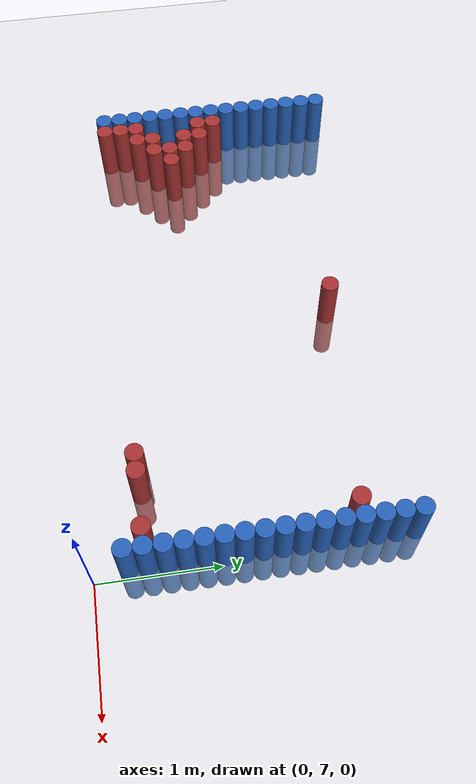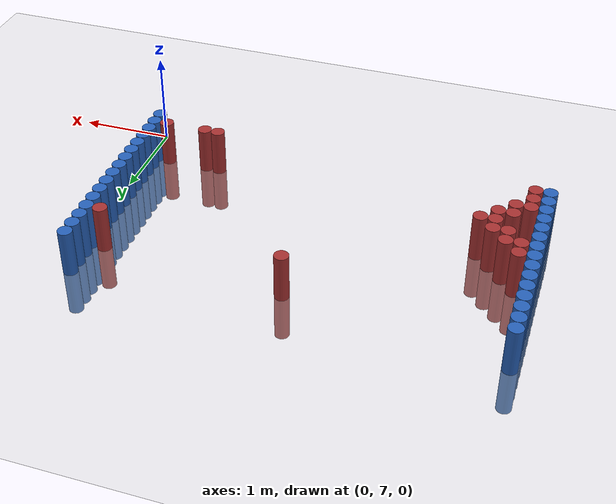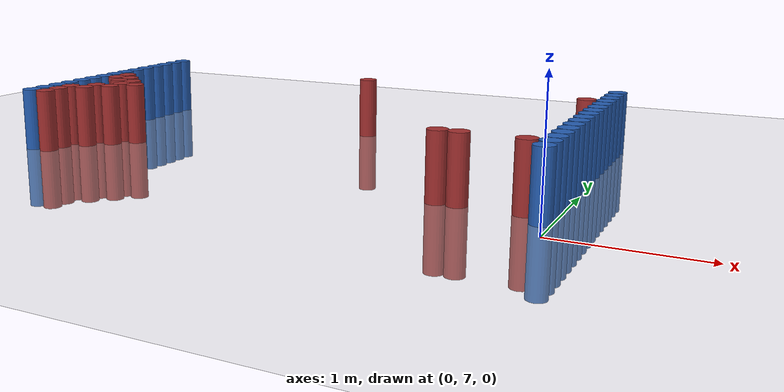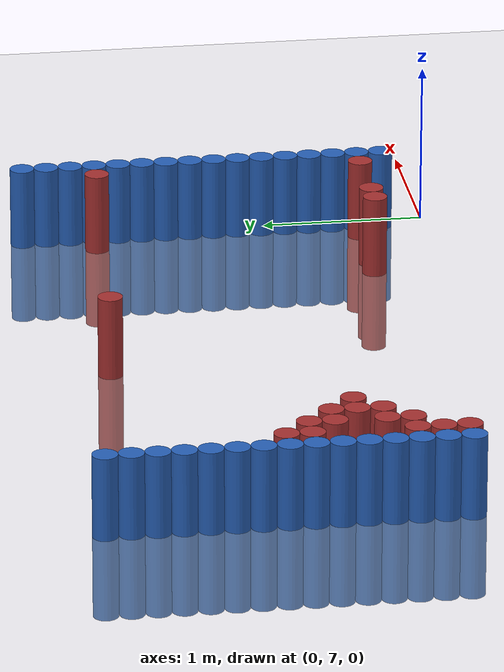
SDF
<sdf version="1.6">
 <world name="default">
  <model name="ground_plane">
   <static>1</static>
   <link name="link">
    <collision name="collision">
     <geometry><plane><normal>0 0 1</normal><size>100 100</size></plane></geometry>
     <surface><friction><ode><mu>100</mu><mu2>50</mu2></ode></friction></surface>
    </collision>
    <visual name="visual">
     <cast_shadows>0</cast_shadows>
     <geometry><plane><normal>0 0 1</normal><size>100 100</size></plane></geometry>
     <material>
      <script><uri>file://media/materials/scripts/gazebo.material</uri><name>Gazebo/Grey</name></script>
     </material>
    </visual>
   </link>
  </model>
  <model name="unit_cylinder_111">
   <static>1</static>
   <pose>-4.425000 7.425000 0.000000 0.000000 0.000000 0.000000</pose>
   <link name="link">
    <inertial>
     <mass>1</mass>
     <inertia><ixx>0.145833</ixx><ixy>0</ixy><ixz>0</ixz><iyy>0.145833</iyy><iyz>0</iyz><izz>0.125</izz></inertia>
    </inertial>
    <collision name="collision">
     <geometry><cylinder><radius>0.075000</radius><length>1</length></cylinder></geometry>
    </collision>
    <visual name="visual">
     <geometry><cylinder><radius>0.075000</radius><length>1</length></cylinder></geometry>
     <material>
      <ambient>0.152000 0.379000 0.720000 1</ambient>
      <diffuse>0.152000 0.379000 0.720000 1</diffuse>
     </material>
     <material>
      <script><name>Gazebo/Grey</name><uri>file://media/materials/scripts/gazebo.material</uri></script>
     </material>
    </visual>
   </link>
  </model>
  <model name="unit_cylinder_112">
   <static>1</static>
   <pose>-4.425000 7.575000 0.000000 0.000000 0.000000 0.000000</pose>
   <link name="link">
    <inertial>
     <mass>1</mass>
     <inertia><ixx>0.145833</ixx><ixy>0</ixy><ixz>0</ixz><iyy>0.145833</iyy><iyz>0</iyz><izz>0.125</izz></inertia>
    </inertial>
    <collision name="collision">
     <geometry><cylinder><radius>0.075000</radius><length>1</length></cylinder></geometry>
    </collision>
    <visual name="visual">
     <geometry><cylinder><radius>0.075000</radius><length>1</length></cylinder></geometry>
     <material>
      <ambient>0.152000 0.379000 0.720000 1</ambient>
      <diffuse>0.152000 0.379000 0.720000 1</diffuse>
     </material>
     <material>
      <script><name>Gazebo/Grey</name><uri>file://media/materials/scripts/gazebo.material</uri></script>
     </material>
    </visual>
   </link>
  </model>
  <model name="unit_cylinder_113">
   <static>1</static>
   <pose>-4.425000 7.725000 0.000000 0.000000 0.000000 0.000000</pose>
   <link name="link">
    <inertial>
     <mass>1</mass>
     <inertia><ixx>0.145833</ixx><ixy>0</ixy><ixz>0</ixz><iyy>0.145833</iyy><iyz>0</iyz><izz>0.125</izz></inertia>
    </inertial>
    <collision name="collision">
     <geometry><cylinder><radius>0.075000</radius><length>1</length></cylinder></geometry>
    </collision>
    <visual name="visual">
     <geometry><cylinder><radius>0.075000</radius><length>1</length></cylinder></geometry>
     <material>
      <ambient>0.152000 0.379000 0.720000 1</ambient>
      <diffuse>0.152000 0.379000 0.720000 1</diffuse>
     </material>
     <material>
      <script><name>Gazebo/Grey</name><uri>file://media/materials/scripts/gazebo.material</uri></script>
     </material>
    </visual>
   </link>
  </model>
  <model name="unit_cylinder_114">
   <static>1</static>
   <pose>-4.425000 7.875000 0.000000 0.000000 0.000000 0.000000</pose>
   <link name="link">
    <inertial>
     <mass>1</mass>
     <inertia><ixx>0.145833</ixx><ixy>0</ixy><ixz>0</ixz><iyy>0.145833</iyy><iyz>0</iyz><izz>0.125</izz></inertia>
    </inertial>
    <collision name="collision">
     <geometry><cylinder><radius>0.075000</radius><length>1</length></cylinder></geometry>
    </collision>
    <visual name="visual">
     <geometry><cylinder><radius>0.075000</radius><length>1</length></cylinder></geometry>
     <material>
      <ambient>0.152000 0.379000 0.720000 1</ambient>
      <diffuse>0.152000 0.379000 0.720000 1</diffuse>
     </material>
     <material>
      <script><name>Gazebo/Grey</name><uri>file://media/materials/scripts/gazebo.material</uri></script>
     </material>
    </visual>
   </link>
  </model>
  <model name="unit_cylinder_115">
   <static>1</static>
   <pose>-4.425000 8.025000 0.000000 0.000000 0.000000 0.000000</pose>
   <link name="link">
    <inertial>
     <mass>1</mass>
     <inertia><ixx>0.145833</ixx><ixy>0</ixy><ixz>0</ixz><iyy>0.145833</iyy><iyz>0</iyz><izz>0.125</izz></inertia>
    </inertial>
    <collision name="collision">
     <geometry><cylinder><radius>0.075000</radius><length>1</length></cylinder></geometry>
    </collision>
    <visual name="visual">
     <geometry><cylinder><radius>0.075000</radius><length>1</length></cylinder></geometry>
     <material>
      <ambient>0.152000 0.379000 0.720000 1</ambient>
      <diffuse>0.152000 0.379000 0.720000 1</diffuse>
     </material>
     <material>
      <script><name>Gazebo/Grey</name><uri>file://media/materials/scripts/gazebo.material</uri></script>
     </material>
    </visual>
   </link>
  </model>
  <model name="unit_cylinder_116">
   <static>1</static>
   <pose>-4.425000 8.175000 0.000000 0.000000 0.000000 0.000000</pose>
   <link name="link">
    <inertial>
     <mass>1</mass>
     <inertia><ixx>0.145833</ixx><ixy>0</ixy><ixz>0</ixz><iyy>0.145833</iyy><iyz>0</iyz><izz>0.125</izz></inertia>
    </inertial>
    <collision name="collision">
     <geometry><cylinder><radius>0.075000</radius><length>1</length></cylinder></geometry>
    </collision>
    <visual name="visual">
     <geometry><cylinder><radius>0.075000</radius><length>1</length></cylinder></geometry>
     <material>
      <ambient>0.152000 0.379000 0.720000 1</ambient>
      <diffuse>0.152000 0.379000 0.720000 1</diffuse>
     </material>
     <material>
      <script><name>Gazebo/Grey</name><uri>file://media/materials/scripts/gazebo.material</uri></script>
     </material>
    </visual>
   </link>
  </model>
  <model name="unit_cylinder_117">
   <static>1</static>
   <pose>-4.425000 8.325000 0.000000 0.000000 0.000000 0.000000</pose>
   <link name="link">
    <inertial>
     <mass>1</mass>
     <inertia><ixx>0.145833</ixx><ixy>0</ixy><ixz>0</ixz><iyy>0.145833</iyy><iyz>0</iyz><izz>0.125</izz></inertia>
    </inertial>
    <collision name="collision">
     <geometry><cylinder><radius>0.075000</radius><length>1</length></cylinder></geometry>
    </collision>
    <visual name="visual">
     <geometry><cylinder><radius>0.075000</radius><length>1</length></cylinder></geometry>
     <material>
      <ambient>0.152000 0.379000 0.720000 1</ambient>
      <diffuse>0.152000 0.379000 0.720000 1</diffuse>
     </material>
     <material>
      <script><name>Gazebo/Grey</name><uri>file://media/materials/scripts/gazebo.material</uri></script>
     </material>
    </visual>
   </link>
  </model>
  <model name="unit_cylinder_118">
   <static>1</static>
   <pose>-4.425000 8.475000 0.000000 0.000000 0.000000 0.000000</pose>
   <link name="link">
    <inertial>
     <mass>1</mass>
     <inertia><ixx>0.145833</ixx><ixy>0</ixy><ixz>0</ixz><iyy>0.145833</iyy><iyz>0</iyz><izz>0.125</izz></inertia>
    </inertial>
    <collision name="collision">
     <geometry><cylinder><radius>0.075000</radius><length>1</length></cylinder></geometry>
    </collision>
    <visual name="visual">
     <geometry><cylinder><radius>0.075000</radius><length>1</length></cylinder></geometry>
     <material>
      <ambient>0.152000 0.379000 0.720000 1</ambient>
      <diffuse>0.152000 0.379000 0.720000 1</diffuse>
     </material>
     <material>
      <script><name>Gazebo/Grey</name><uri>file://media/materials/scripts/gazebo.material</uri></script>
     </material>
    </visual>
   </link>
  </model>
  <model name="unit_cylinder_119">
   <static>1</static>
   <pose>-4.425000 8.625000 0.000000 0.000000 0.000000 0.000000</pose>
   <link name="link">
    <inertial>
     <mass>1</mass>
     <inertia><ixx>0.145833</ixx><ixy>0</ixy><ixz>0</ixz><iyy>0.145833</iyy><iyz>0</iyz><izz>0.125</izz></inertia>
    </inertial>
    <collision name="collision">
     <geometry><cylinder><radius>0.075000</radius><length>1</length></cylinder></geometry>
    </collision>
    <visual name="visual">
     <geometry><cylinder><radius>0.075000</radius><length>1</length></cylinder></geometry>
     <material>
      <ambient>0.152000 0.379000 0.720000 1</ambient>
      <diffuse>0.152000 0.379000 0.720000 1</diffuse>
     </material>
     <material>
      <script><name>Gazebo/Grey</name><uri>file://media/materials/scripts/gazebo.material</uri></script>
     </material>
    </visual>
   </link>
  </model>
  <model name="unit_cylinder_120">
   <static>1</static>
   <pose>-4.425000 8.775000 0.000000 0.000000 0.000000 0.000000</pose>
   <link name="link">
    <inertial>
     <mass>1</mass>
     <inertia><ixx>0.145833</ixx><ixy>0</ixy><ixz>0</ixz><iyy>0.145833</iyy><iyz>0</iyz><izz>0.125</izz></inertia>
    </inertial>
    <collision name="collision">
     <geometry><cylinder><radius>0.075000</radius><length>1</length></cylinder></geometry>
    </collision>
    <visual name="visual">
     <geometry><cylinder><radius>0.075000</radius><length>1</length></cylinder></geometry>
     <material>
      <ambient>0.152000 0.379000 0.720000 1</ambient>
      <diffuse>0.152000 0.379000 0.720000 1</diffuse>
     </material>
     <material>
      <script><name>Gazebo/Grey</name><uri>file://media/materials/scripts/gazebo.material</uri></script>
     </material>
    </visual>
   </link>
  </model>
  <model name="unit_cylinder_121">
   <static>1</static>
   <pose>-4.425000 8.925000 0.000000 0.000000 0.000000 0.000000</pose>
   <link name="link">
    <inertial>
     <mass>1</mass>
     <inertia><ixx>0.145833</ixx><ixy>0</ixy><ixz>0</ixz><iyy>0.145833</iyy><iyz>0</iyz><izz>0.125</izz></inertia>
    </inertial>
    <collision name="collision">
     <geometry><cylinder><radius>0.075000</radius><length>1</length></cylinder></geometry>
    </collision>
    <visual name="visual">
     <geometry><cylinder><radius>0.075000</radius><length>1</length></cylinder></geometry>
     <material>
      <ambient>0.152000 0.379000 0.720000 1</ambient>
      <diffuse>0.152000 0.379000 0.720000 1</diffuse>
     </material>
     <material>
      <script><name>Gazebo/Grey</name><uri>file://media/materials/scripts/gazebo.material</uri></script>
     </material>
    </visual>
   </link>
  </model>
  <model name="unit_cylinder_122">
   <static>1</static>
   <pose>-4.425000 9.075000 0.000000 0.000000 0.000000 0.000000</pose>
   <link name="link">
    <inertial>
     <mass>1</mass>
     <inertia><ixx>0.145833</ixx><ixy>0</ixy><ixz>0</ixz><iyy>0.145833</iyy><iyz>0</iyz><izz>0.125</izz></inertia>
    </inertial>
    <collision name="collision">
     <geometry><cylinder><radius>0.075000</radius><length>1</length></cylinder></geometry>
    </collision>
    <visual name="visual">
     <geometry><cylinder><radius>0.075000</radius><length>1</length></cylinder></geometry>
     <material>
      <ambient>0.152000 0.379000 0.720000 1</ambient>
      <diffuse>0.152000 0.379000 0.720000 1</diffuse>
     </material>
     <material>
      <script><name>Gazebo/Grey</name><uri>file://media/materials/scripts/gazebo.material</uri></script>
     </material>
    </visual>
   </link>
  </model>
  <model name="unit_cylinder_123">
   <static>1</static>
   <pose>-4.425000 9.225000 0.000000 0.000000 0.000000 0.000000</pose>
   <link name="link">
    <inertial>
     <mass>1</mass>
     <inertia><ixx>0.145833</ixx><ixy>0</ixy><ixz>0</ixz><iyy>0.145833</iyy><iyz>0</iyz><izz>0.125</izz></inertia>
    </inertial>
    <collision name="collision">
     <geometry><cylinder><radius>0.075000</radius><length>1</length></cylinder></geometry>
    </collision>
    <visual name="visual">
     <geometry><cylinder><radius>0.075000</radius><length>1</length></cylinder></geometry>
     <material>
      <ambient>0.152000 0.379000 0.720000 1</ambient>
      <diffuse>0.152000 0.379000 0.720000 1</diffuse>
     </material>
     <material>
      <script><name>Gazebo/Grey</name><uri>file://media/materials/scripts/gazebo.material</uri></script>
     </material>
    </visual>
   </link>
  </model>
  <model name="unit_cylinder_124">
   <static>1</static>
   <pose>-4.425000 9.375000 0.000000 0.000000 0.000000 0.000000</pose>
   <link name="link">
    <inertial>
     <mass>1</mass>
     <inertia><ixx>0.145833</ixx><ixy>0</ixy><ixz>0</ixz><iyy>0.145833</iyy><iyz>0</iyz><izz>0.125</izz></inertia>
    </inertial>
    <collision name="collision">
     <geometry><cylinder><radius>0.075000</radius><length>1</length></cylinder></geometry>
    </collision>
    <visual name="visual">
     <geometry><cylinder><radius>0.075000</radius><length>1</length></cylinder></geometry>
     <material>
      <ambient>0.152000 0.379000 0.720000 1</ambient>
      <diffuse>0.152000 0.379000 0.720000 1</diffuse>
     </material>
     <material>
      <script><name>Gazebo/Grey</name><uri>file://media/materials/scripts/gazebo.material</uri></script>
     </material>
    </visual>
   </link>
  </model>
  <model name="unit_cylinder_125">
   <static>1</static>
   <pose>-4.425000 9.525000 0.000000 0.000000 0.000000 0.000000</pose>
   <link name="link">
    <inertial>
     <mass>1</mass>
     <inertia><ixx>0.145833</ixx><ixy>0</ixy><ixz>0</ixz><iyy>0.145833</iyy><iyz>0</iyz><izz>0.125</izz></inertia>
    </inertial>
    <collision name="collision">
     <geometry><cylinder><radius>0.075000</radius><length>1</length></cylinder></geometry>
    </collision>
    <visual name="visual">
     <geometry><cylinder><radius>0.075000</radius><length>1</length></cylinder></geometry>
     <material>
      <ambient>0.152000 0.379000 0.720000 1</ambient>
      <diffuse>0.152000 0.379000 0.720000 1</diffuse>
     </material>
     <material>
      <script><name>Gazebo/Grey</name><uri>file://media/materials/scripts/gazebo.material</uri></script>
     </material>
    </visual>
   </link>
  </model>
  <model name="unit_cylinder_129">
   <static>1</static>
   <pose>-4.275000 7.425000 0.000000 0.000000 0.000000 0.000000</pose>
   <link name="link">
    <inertial>
     <mass>1</mass>
     <inertia><ixx>0.145833</ixx><ixy>0</ixy><ixz>0</ixz><iyy>0.145833</iyy><iyz>0</iyz><izz>0.125</izz></inertia>
    </inertial>
    <collision name="collision">
     <geometry><cylinder><radius>0.075000</radius><length>1</length></cylinder></geometry>
    </collision>
    <visual name="visual">
     <geometry><cylinder><radius>0.075000</radius><length>1</length></cylinder></geometry>
     <material>
      <ambient>0.648000 0.192000 0.192000 1</ambient>
      <diffuse>0.648000 0.192000 0.192000 1</diffuse>
     </material>
     <material>
      <script><name>Gazebo/Grey</name><uri>file://media/materials/scripts/gazebo.material</uri></script>
     </material>
    </visual>
   </link>
  </model>
  <model name="unit_cylinder_130">
   <static>1</static>
   <pose>-4.275000 7.575000 0.000000 0.000000 0.000000 0.000000</pose>
   <link name="link">
    <inertial>
     <mass>1</mass>
     <inertia><ixx>0.145833</ixx><ixy>0</ixy><ixz>0</ixz><iyy>0.145833</iyy><iyz>0</iyz><izz>0.125</izz></inertia>
    </inertial>
    <collision name="collision">
     <geometry><cylinder><radius>0.075000</radius><length>1</length></cylinder></geometry>
    </collision>
    <visual name="visual">
     <geometry><cylinder><radius>0.075000</radius><length>1</length></cylinder></geometry>
     <material>
      <ambient>0.648000 0.192000 0.192000 1</ambient>
      <diffuse>0.648000 0.192000 0.192000 1</diffuse>
     </material>
     <material>
      <script><name>Gazebo/Grey</name><uri>file://media/materials/scripts/gazebo.material</uri></script>
     </material>
    </visual>
   </link>
  </model>
  <model name="unit_cylinder_131">
   <static>1</static>
   <pose>-4.275000 7.725000 0.000000 0.000000 0.000000 0.000000</pose>
   <link name="link">
    <inertial>
     <mass>1</mass>
     <inertia><ixx>0.145833</ixx><ixy>0</ixy><ixz>0</ixz><iyy>0.145833</iyy><iyz>0</iyz><izz>0.125</izz></inertia>
    </inertial>
    <collision name="collision">
     <geometry><cylinder><radius>0.075000</radius><length>1</length></cylinder></geometry>
    </collision>
    <visual name="visual">
     <geometry><cylinder><radius>0.075000</radius><length>1</length></cylinder></geometry>
     <material>
      <ambient>0.648000 0.192000 0.192000 1</ambient>
      <diffuse>0.648000 0.192000 0.192000 1</diffuse>
     </material>
     <material>
      <script><name>Gazebo/Grey</name><uri>file://media/materials/scripts/gazebo.material</uri></script>
     </material>
    </visual>
   </link>
  </model>
  <model name="unit_cylinder_132">
   <static>1</static>
   <pose>-4.275000 8.325000 0.000000 0.000000 0.000000 0.000000</pose>
   <link name="link">
    <inertial>
     <mass>1</mass>
     <inertia><ixx>0.145833</ixx><ixy>0</ixy><ixz>0</ixz><iyy>0.145833</iyy><iyz>0</iyz><izz>0.125</izz></inertia>
    </inertial>
    <collision name="collision">
     <geometry><cylinder><radius>0.075000</radius><length>1</length></cylinder></geometry>
    </collision>
    <visual name="visual">
     <geometry><cylinder><radius>0.075000</radius><length>1</length></cylinder></geometry>
     <material>
      <ambient>0.648000 0.192000 0.192000 1</ambient>
      <diffuse>0.648000 0.192000 0.192000 1</diffuse>
     </material>
     <material>
      <script><name>Gazebo/Grey</name><uri>file://media/materials/scripts/gazebo.material</uri></script>
     </material>
    </visual>
   </link>
  </model>
  <model name="unit_cylinder_133">
   <static>1</static>
   <pose>-4.275000 8.475000 0.000000 0.000000 0.000000 0.000000</pose>
   <link name="link">
    <inertial>
     <mass>1</mass>
     <inertia><ixx>0.145833</ixx><ixy>0</ixy><ixz>0</ixz><iyy>0.145833</iyy><iyz>0</iyz><izz>0.125</izz></inertia>
    </inertial>
    <collision name="collision">
     <geometry><cylinder><radius>0.075000</radius><length>1</length></cylinder></geometry>
    </collision>
    <visual name="visual">
     <geometry><cylinder><radius>0.075000</radius><length>1</length></cylinder></geometry>
     <material>
      <ambient>0.648000 0.192000 0.192000 1</ambient>
      <diffuse>0.648000 0.192000 0.192000 1</diffuse>
     </material>
     <material>
      <script><name>Gazebo/Grey</name><uri>file://media/materials/scripts/gazebo.material</uri></script>
     </material>
    </visual>
   </link>
  </model>
  <model name="unit_cylinder_134">
   <static>1</static>
   <pose>-4.125000 7.725000 0.000000 0.000000 0.000000 0.000000</pose>
   <link name="link">
    <inertial>
     <mass>1</mass>
     <inertia><ixx>0.145833</ixx><ixy>0</ixy><ixz>0</ixz><iyy>0.145833</iyy><iyz>0</iyz><izz>0.125</izz></inertia>
    </inertial>
    <collision name="collision">
     <geometry><cylinder><radius>0.075000</radius><length>1</length></cylinder></geometry>
    </collision>
    <visual name="visual">
     <geometry><cylinder><radius>0.075000</radius><length>1</length></cylinder></geometry>
     <material>
      <ambient>0.648000 0.192000 0.192000 1</ambient>
      <diffuse>0.648000 0.192000 0.192000 1</diffuse>
     </material>
     <material>
      <script><name>Gazebo/Grey</name><uri>file://media/materials/scripts/gazebo.material</uri></script>
     </material>
    </visual>
   </link>
  </model>
  <model name="unit_cylinder_135">
   <static>1</static>
   <pose>-4.125000 7.875000 0.000000 0.000000 0.000000 0.000000</pose>
   <link name="link">
    <inertial>
     <mass>1</mass>
     <inertia><ixx>0.145833</ixx><ixy>0</ixy><ixz>0</ixz><iyy>0.145833</iyy><iyz>0</iyz><izz>0.125</izz></inertia>
    </inertial>
    <collision name="collision">
     <geometry><cylinder><radius>0.075000</radius><length>1</length></cylinder></geometry>
    </collision>
    <visual name="visual">
     <geometry><cylinder><radius>0.075000</radius><length>1</length></cylinder></geometry>
     <material>
      <ambient>0.648000 0.192000 0.192000 1</ambient>
      <diffuse>0.648000 0.192000 0.192000 1</diffuse>
     </material>
     <material>
      <script><name>Gazebo/Grey</name><uri>file://media/materials/scripts/gazebo.material</uri></script>
     </material>
    </visual>
   </link>
  </model>
  <model name="unit_cylinder_136">
   <static>1</static>
   <pose>-4.125000 8.175000 0.000000 0.000000 0.000000 0.000000</pose>
   <link name="link">
    <inertial>
     <mass>1</mass>
     <inertia><ixx>0.145833</ixx><ixy>0</ixy><ixz>0</ixz><iyy>0.145833</iyy><iyz>0</iyz><izz>0.125</izz></inertia>
    </inertial>
    <collision name="collision">
     <geometry><cylinder><radius>0.075000</radius><length>1</length></cylinder></geometry>
    </collision>
    <visual name="visual">
     <geometry><cylinder><radius>0.075000</radius><length>1</length></cylinder></geometry>
     <material>
      <ambient>0.648000 0.192000 0.192000 1</ambient>
      <diffuse>0.648000 0.192000 0.192000 1</diffuse>
     </material>
     <material>
      <script><name>Gazebo/Grey</name><uri>file://media/materials/scripts/gazebo.material</uri></script>
     </material>
    </visual>
   </link>
  </model>
  <model name="unit_cylinder_137">
   <static>1</static>
   <pose>-4.125000 8.325000 0.000000 0.000000 0.000000 0.000000</pose>
   <link name="link">
    <inertial>
     <mass>1</mass>
     <inertia><ixx>0.145833</ixx><ixy>0</ixy><ixz>0</ixz><iyy>0.145833</iyy><iyz>0</iyz><izz>0.125</izz></inertia>
    </inertial>
    <collision name="collision">
     <geometry><cylinder><radius>0.075000</radius><length>1</length></cylinder></geometry>
    </collision>
    <visual name="visual">
     <geometry><cylinder><radius>0.075000</radius><length>1</length></cylinder></geometry>
     <material>
      <ambient>0.648000 0.192000 0.192000 1</ambient>
      <diffuse>0.648000 0.192000 0.192000 1</diffuse>
     </material>
     <material>
      <script><name>Gazebo/Grey</name><uri>file://media/materials/scripts/gazebo.material</uri></script>
     </material>
    </visual>
   </link>
  </model>
  <model name="unit_cylinder_138">
   <static>1</static>
   <pose>-3.975000 7.875000 0.000000 0.000000 0.000000 0.000000</pose>
   <link name="link">
    <inertial>
     <mass>1</mass>
     <inertia><ixx>0.145833</ixx><ixy>0</ixy><ixz>0</ixz><iyy>0.145833</iyy><iyz>0</iyz><izz>0.125</izz></inertia>
    </inertial>
    <collision name="collision">
     <geometry><cylinder><radius>0.075000</radius><length>1</length></cylinder></geometry>
    </collision>
    <visual name="visual">
     <geometry><cylinder><radius>0.075000</radius><length>1</length></cylinder></geometry>
     <material>
      <ambient>0.648000 0.192000 0.192000 1</ambient>
      <diffuse>0.648000 0.192000 0.192000 1</diffuse>
     </material>
     <material>
      <script><name>Gazebo/Grey</name><uri>file://media/materials/scripts/gazebo.material</uri></script>
     </material>
    </visual>
   </link>
  </model>
  <model name="unit_cylinder_139">
   <static>1</static>
   <pose>-3.975000 8.025000 0.000000 0.000000 0.000000 0.000000</pose>
   <link name="link">
    <inertial>
     <mass>1</mass>
     <inertia><ixx>0.145833</ixx><ixy>0</ixy><ixz>0</ixz><iyy>0.145833</iyy><iyz>0</iyz><izz>0.125</izz></inertia>
    </inertial>
    <collision name="collision">
     <geometry><cylinder><radius>0.075000</radius><length>1</length></cylinder></geometry>
    </collision>
    <visual name="visual">
     <geometry><cylinder><radius>0.075000</radius><length>1</length></cylinder></geometry>
     <material>
      <ambient>0.648000 0.192000 0.192000 1</ambient>
      <diffuse>0.648000 0.192000 0.192000 1</diffuse>
     </material>
     <material>
      <script><name>Gazebo/Grey</name><uri>file://media/materials/scripts/gazebo.material</uri></script>
     </material>
    </visual>
   </link>
  </model>
  <model name="unit_cylinder_140">
   <static>1</static>
   <pose>-3.975000 8.175000 0.000000 0.000000 0.000000 0.000000</pose>
   <link name="link">
    <inertial>
     <mass>1</mass>
     <inertia><ixx>0.145833</ixx><ixy>0</ixy><ixz>0</ixz><iyy>0.145833</iyy><iyz>0</iyz><izz>0.125</izz></inertia>
    </inertial>
    <collision name="collision">
     <geometry><cylinder><radius>0.075000</radius><length>1</length></cylinder></geometry>
    </collision>
    <visual name="visual">
     <geometry><cylinder><radius>0.075000</radius><length>1</length></cylinder></geometry>
     <material>
      <ambient>0.648000 0.192000 0.192000 1</ambient>
      <diffuse>0.648000 0.192000 0.192000 1</diffuse>
     </material>
     <material>
      <script><name>Gazebo/Grey</name><uri>file://media/materials/scripts/gazebo.material</uri></script>
     </material>
    </visual>
   </link>
  </model>
  <model name="unit_cylinder_141">
   <static>1</static>
   <pose>-3.825000 8.025000 0.000000 0.000000 0.000000 0.000000</pose>
   <link name="link">
    <inertial>
     <mass>1</mass>
     <inertia><ixx>0.145833</ixx><ixy>0</ixy><ixz>0</ixz><iyy>0.145833</iyy><iyz>0</iyz><izz>0.125</izz></inertia>
    </inertial>
    <collision name="collision">
     <geometry><cylinder><radius>0.075000</radius><length>1</length></cylinder></geometry>
    </collision>
    <visual name="visual">
     <geometry><cylinder><radius>0.075000</radius><length>1</length></cylinder></geometry>
     <material>
      <ambient>0.648000 0.192000 0.192000 1</ambient>
      <diffuse>0.648000 0.192000 0.192000 1</diffuse>
     </material>
     <material>
      <script><name>Gazebo/Grey</name><uri>file://media/materials/scripts/gazebo.material</uri></script>
     </material>
    </visual>
   </link>
  </model>
  <model name="unit_cylinder_153">
   <static>1</static>
   <pose>-2.175000 9.225000 0.000000 0.000000 0.000000 0.000000</pose>
   <link name="link">
    <inertial>
     <mass>1</mass>
     <inertia><ixx>0.145833</ixx><ixy>0</ixy><ixz>0</ixz><iyy>0.145833</iyy><iyz>0</iyz><izz>0.125</izz></inertia>
    </inertial>
    <collision name="collision">
     <geometry><cylinder><radius>0.075000</radius><length>1</length></cylinder></geometry>
    </collision>
    <visual name="visual">
     <geometry><cylinder><radius>0.075000</radius><length>1</length></cylinder></geometry>
     <material>
      <ambient>0.648000 0.192000 0.192000 1</ambient>
      <diffuse>0.648000 0.192000 0.192000 1</diffuse>
     </material>
     <material>
      <script><name>Gazebo/Grey</name><uri>file://media/materials/scripts/gazebo.material</uri></script>
     </material>
    </visual>
   </link>
  </model>
  <model name="unit_cylinder_163">
   <static>1</static>
   <pose>-0.825000 7.425000 0.000000 0.000000 0.000000 0.000000</pose>
   <link name="link">
    <inertial>
     <mass>1</mass>
     <inertia><ixx>0.145833</ixx><ixy>0</ixy><ixz>0</ixz><iyy>0.145833</iyy><iyz>0</iyz><izz>0.125</izz></inertia>
    </inertial>
    <collision name="collision">
     <geometry><cylinder><radius>0.075000</radius><length>1</length></cylinder></geometry>
    </collision>
    <visual name="visual">
     <geometry><cylinder><radius>0.075000</radius><length>1</length></cylinder></geometry>
     <material>
      <ambient>0.648000 0.192000 0.192000 1</ambient>
      <diffuse>0.648000 0.192000 0.192000 1</diffuse>
     </material>
     <material>
      <script><name>Gazebo/Grey</name><uri>file://media/materials/scripts/gazebo.material</uri></script>
     </material>
    </visual>
   </link>
  </model>
  <model name="unit_cylinder_165">
   <static>1</static>
   <pose>-0.675000 7.425000 0.000000 0.000000 0.000000 0.000000</pose>
   <link name="link">
    <inertial>
     <mass>1</mass>
     <inertia><ixx>0.145833</ixx><ixy>0</ixy><ixz>0</ixz><iyy>0.145833</iyy><iyz>0</iyz><izz>0.125</izz></inertia>
    </inertial>
    <collision name="collision">
     <geometry><cylinder><radius>0.075000</radius><length>1</length></cylinder></geometry>
    </collision>
    <visual name="visual">
     <geometry><cylinder><radius>0.075000</radius><length>1</length></cylinder></geometry>
     <material>
      <ambient>0.648000 0.192000 0.192000 1</ambient>
      <diffuse>0.648000 0.192000 0.192000 1</diffuse>
     </material>
     <material>
      <script><name>Gazebo/Grey</name><uri>file://media/materials/scripts/gazebo.material</uri></script>
     </material>
    </visual>
   </link>
  </model>
  <model name="unit_cylinder_166">
   <static>1</static>
   <pose>-0.225000 7.425000 0.000000 0.000000 0.000000 0.000000</pose>
   <link name="link">
    <inertial>
     <mass>1</mass>
     <inertia><ixx>0.145833</ixx><ixy>0</ixy><ixz>0</ixz><iyy>0.145833</iyy><iyz>0</iyz><izz>0.125</izz></inertia>
    </inertial>
    <collision name="collision">
     <geometry><cylinder><radius>0.075000</radius><length>1</length></cylinder></geometry>
    </collision>
    <visual name="visual">
     <geometry><cylinder><radius>0.075000</radius><length>1</length></cylinder></geometry>
     <material>
      <ambient>0.648000 0.192000 0.192000 1</ambient>
      <diffuse>0.648000 0.192000 0.192000 1</diffuse>
     </material>
     <material>
      <script><name>Gazebo/Grey</name><uri>file://media/materials/scripts/gazebo.material</uri></script>
     </material>
    </visual>
   </link>
  </model>
  <model name="unit_cylinder_167">
   <static>1</static>
   <pose>-0.225000 9.075000 0.000000 0.000000 0.000000 0.000000</pose>
   <link name="link">
    <inertial>
     <mass>1</mass>
     <inertia><ixx>0.145833</ixx><ixy>0</ixy><ixz>0</ixz><iyy>0.145833</iyy><iyz>0</iyz><izz>0.125</izz></inertia>
    </inertial>
    <collision name="collision">
     <geometry><cylinder><radius>0.075000</radius><length>1</length></cylinder></geometry>
    </collision>
    <visual name="visual">
     <geometry><cylinder><radius>0.075000</radius><length>1</length></cylinder></geometry>
     <material>
      <ambient>0.648000 0.192000 0.192000 1</ambient>
      <diffuse>0.648000 0.192000 0.192000 1</diffuse>
     </material>
     <material>
      <script><name>Gazebo/Grey</name><uri>file://media/materials/scripts/gazebo.material</uri></script>
     </material>
    </visual>
   </link>
  </model>
  <model name="unit_cylinder_182">
   <static>1</static>
   <pose>-0.075000 7.275000 0.000000 0.000000 0.000000 0.000000</pose>
   <link name="link">
    <inertial>
     <mass>1</mass>
     <inertia><ixx>0.145833</ixx><ixy>0</ixy><ixz>0</ixz><iyy>0.145833</iyy><iyz>0</iyz><izz>0.125</izz></inertia>
    </inertial>
    <collision name="collision">
     <geometry><cylinder><radius>0.075000</radius><length>1</length></cylinder></geometry>
    </collision>
    <visual name="visual">
     <geometry><cylinder><radius>0.075000</radius><length>1</length></cylinder></geometry>
     <material>
      <ambient>0.152000 0.379000 0.720000 1</ambient>
      <diffuse>0.152000 0.379000 0.720000 1</diffuse>
     </material>
     <material>
      <script><name>Gazebo/Grey</name><uri>file://media/materials/scripts/gazebo.material</uri></script>
     </material>
    </visual>
   </link>
  </model>
  <model name="unit_cylinder_183">
   <static>1</static>
   <pose>-0.075000 7.425000 0.000000 0.000000 0.000000 0.000000</pose>
   <link name="link">
    <inertial>
     <mass>1</mass>
     <inertia><ixx>0.145833</ixx><ixy>0</ixy><ixz>0</ixz><iyy>0.145833</iyy><iyz>0</iyz><izz>0.125</izz></inertia>
    </inertial>
    <collision name="collision">
     <geometry><cylinder><radius>0.075000</radius><length>1</length></cylinder></geometry>
    </collision>
    <visual name="visual">
     <geometry><cylinder><radius>0.075000</radius><length>1</length></cylinder></geometry>
     <material>
      <ambient>0.152000 0.379000 0.720000 1</ambient>
      <diffuse>0.152000 0.379000 0.720000 1</diffuse>
     </material>
     <material>
      <script><name>Gazebo/Grey</name><uri>file://media/materials/scripts/gazebo.material</uri></script>
     </material>
    </visual>
   </link>
  </model>
  <model name="unit_cylinder_184">
   <static>1</static>
   <pose>-0.075000 7.575000 0.000000 0.000000 0.000000 0.000000</pose>
   <link name="link">
    <inertial>
     <mass>1</mass>
     <inertia><ixx>0.145833</ixx><ixy>0</ixy><ixz>0</ixz><iyy>0.145833</iyy><iyz>0</iyz><izz>0.125</izz></inertia>
    </inertial>
    <collision name="collision">
     <geometry><cylinder><radius>0.075000</radius><length>1</length></cylinder></geometry>
    </collision>
    <visual name="visual">
     <geometry><cylinder><radius>0.075000</radius><length>1</length></cylinder></geometry>
     <material>
      <ambient>0.152000 0.379000 0.720000 1</ambient>
      <diffuse>0.152000 0.379000 0.720000 1</diffuse>
     </material>
     <material>
      <script><name>Gazebo/Grey</name><uri>file://media/materials/scripts/gazebo.material</uri></script>
     </material>
    </visual>
   </link>
  </model>
  <model name="unit_cylinder_185">
   <static>1</static>
   <pose>-0.075000 7.725000 0.000000 0.000000 0.000000 0.000000</pose>
   <link name="link">
    <inertial>
     <mass>1</mass>
     <inertia><ixx>0.145833</ixx><ixy>0</ixy><ixz>0</ixz><iyy>0.145833</iyy><iyz>0</iyz><izz>0.125</izz></inertia>
    </inertial>
    <collision name="collision">
     <geometry><cylinder><radius>0.075000</radius><length>1</length></cylinder></geometry>
    </collision>
    <visual name="visual">
     <geometry><cylinder><radius>0.075000</radius><length>1</length></cylinder></geometry>
     <material>
      <ambient>0.152000 0.379000 0.720000 1</ambient>
      <diffuse>0.152000 0.379000 0.720000 1</diffuse>
     </material>
     <material>
      <script><name>Gazebo/Grey</name><uri>file://media/materials/scripts/gazebo.material</uri></script>
     </material>
    </visual>
   </link>
  </model>
  <model name="unit_cylinder_186">
   <static>1</static>
   <pose>-0.075000 7.875000 0.000000 0.000000 0.000000 0.000000</pose>
   <link name="link">
    <inertial>
     <mass>1</mass>
     <inertia><ixx>0.145833</ixx><ixy>0</ixy><ixz>0</ixz><iyy>0.145833</iyy><iyz>0</iyz><izz>0.125</izz></inertia>
    </inertial>
    <collision name="collision">
     <geometry><cylinder><radius>0.075000</radius><length>1</length></cylinder></geometry>
    </collision>
    <visual name="visual">
     <geometry><cylinder><radius>0.075000</radius><length>1</length></cylinder></geometry>
     <material>
      <ambient>0.152000 0.379000 0.720000 1</ambient>
      <diffuse>0.152000 0.379000 0.720000 1</diffuse>
     </material>
     <material>
      <script><name>Gazebo/Grey</name><uri>file://media/materials/scripts/gazebo.material</uri></script>
     </material>
    </visual>
   </link>
  </model>
  <model name="unit_cylinder_187">
   <static>1</static>
   <pose>-0.075000 8.025000 0.000000 0.000000 0.000000 0.000000</pose>
   <link name="link">
    <inertial>
     <mass>1</mass>
     <inertia><ixx>0.145833</ixx><ixy>0</ixy><ixz>0</ixz><iyy>0.145833</iyy><iyz>0</iyz><izz>0.125</izz></inertia>
    </inertial>
    <collision name="collision">
     <geometry><cylinder><radius>0.075000</radius><length>1</length></cylinder></geometry>
    </collision>
    <visual name="visual">
     <geometry><cylinder><radius>0.075000</radius><length>1</length></cylinder></geometry>
     <material>
      <ambient>0.152000 0.379000 0.720000 1</ambient>
      <diffuse>0.152000 0.379000 0.720000 1</diffuse>
     </material>
     <material>
      <script><name>Gazebo/Grey</name><uri>file://media/materials/scripts/gazebo.material</uri></script>
     </material>
    </visual>
   </link>
  </model>
  <model name="unit_cylinder_188">
   <static>1</static>
   <pose>-0.075000 8.175000 0.000000 0.000000 0.000000 0.000000</pose>
   <link name="link">
    <inertial>
     <mass>1</mass>
     <inertia><ixx>0.145833</ixx><ixy>0</ixy><ixz>0</ixz><iyy>0.145833</iyy><iyz>0</iyz><izz>0.125</izz></inertia>
    </inertial>
    <collision name="collision">
     <geometry><cylinder><radius>0.075000</radius><length>1</length></cylinder></geometry>
    </collision>
    <visual name="visual">
     <geometry><cylinder><radius>0.075000</radius><length>1</length></cylinder></geometry>
     <material>
      <ambient>0.152000 0.379000 0.720000 1</ambient>
      <diffuse>0.152000 0.379000 0.720000 1</diffuse>
     </material>
     <material>
      <script><name>Gazebo/Grey</name><uri>file://media/materials/scripts/gazebo.material</uri></script>
     </material>
    </visual>
   </link>
  </model>
  <model name="unit_cylinder_189">
   <static>1</static>
   <pose>-0.075000 8.325000 0.000000 0.000000 0.000000 0.000000</pose>
   <link name="link">
    <inertial>
     <mass>1</mass>
     <inertia><ixx>0.145833</ixx><ixy>0</ixy><ixz>0</ixz><iyy>0.145833</iyy><iyz>0</iyz><izz>0.125</izz></inertia>
    </inertial>
    <collision name="collision">
     <geometry><cylinder><radius>0.075000</radius><length>1</length></cylinder></geometry>
    </collision>
    <visual name="visual">
     <geometry><cylinder><radius>0.075000</radius><length>1</length></cylinder></geometry>
     <material>
      <ambient>0.152000 0.379000 0.720000 1</ambient>
      <diffuse>0.152000 0.379000 0.720000 1</diffuse>
     </material>
     <material>
      <script><name>Gazebo/Grey</name><uri>file://media/materials/scripts/gazebo.material</uri></script>
     </material>
    </visual>
   </link>
  </model>
  <model name="unit_cylinder_190">
   <static>1</static>
   <pose>-0.075000 8.475000 0.000000 0.000000 0.000000 0.000000</pose>
   <link name="link">
    <inertial>
     <mass>1</mass>
     <inertia><ixx>0.145833</ixx><ixy>0</ixy><ixz>0</ixz><iyy>0.145833</iyy><iyz>0</iyz><izz>0.125</izz></inertia>
    </inertial>
    <collision name="collision">
     <geometry><cylinder><radius>0.075000</radius><length>1</length></cylinder></geometry>
    </collision>
    <visual name="visual">
     <geometry><cylinder><radius>0.075000</radius><length>1</length></cylinder></geometry>
     <material>
      <ambient>0.152000 0.379000 0.720000 1</ambient>
      <diffuse>0.152000 0.379000 0.720000 1</diffuse>
     </material>
     <material>
      <script><name>Gazebo/Grey</name><uri>file://media/materials/scripts/gazebo.material</uri></script>
     </material>
    </visual>
   </link>
  </model>
  <model name="unit_cylinder_191">
   <static>1</static>
   <pose>-0.075000 8.625000 0.000000 0.000000 0.000000 0.000000</pose>
   <link name="link">
    <inertial>
     <mass>1</mass>
     <inertia><ixx>0.145833</ixx><ixy>0</ixy><ixz>0</ixz><iyy>0.145833</iyy><iyz>0</iyz><izz>0.125</izz></inertia>
    </inertial>
    <collision name="collision">
     <geometry><cylinder><radius>0.075000</radius><length>1</length></cylinder></geometry>
    </collision>
    <visual name="visual">
     <geometry><cylinder><radius>0.075000</radius><length>1</length></cylinder></geometry>
     <material>
      <ambient>0.152000 0.379000 0.720000 1</ambient>
      <diffuse>0.152000 0.379000 0.720000 1</diffuse>
     </material>
     <material>
      <script><name>Gazebo/Grey</name><uri>file://media/materials/scripts/gazebo.material</uri></script>
     </material>
    </visual>
   </link>
  </model>
  <model name="unit_cylinder_192">
   <static>1</static>
   <pose>-0.075000 8.775000 0.000000 0.000000 0.000000 0.000000</pose>
   <link name="link">
    <inertial>
     <mass>1</mass>
     <inertia><ixx>0.145833</ixx><ixy>0</ixy><ixz>0</ixz><iyy>0.145833</iyy><iyz>0</iyz><izz>0.125</izz></inertia>
    </inertial>
    <collision name="collision">
     <geometry><cylinder><radius>0.075000</radius><length>1</length></cylinder></geometry>
    </collision>
    <visual name="visual">
     <geometry><cylinder><radius>0.075000</radius><length>1</length></cylinder></geometry>
     <material>
      <ambient>0.152000 0.379000 0.720000 1</ambient>
      <diffuse>0.152000 0.379000 0.720000 1</diffuse>
     </material>
     <material>
      <script><name>Gazebo/Grey</name><uri>file://media/materials/scripts/gazebo.material</uri></script>
     </material>
    </visual>
   </link>
  </model>
  <model name="unit_cylinder_193">
   <static>1</static>
   <pose>-0.075000 8.925000 0.000000 0.000000 0.000000 0.000000</pose>
   <link name="link">
    <inertial>
     <mass>1</mass>
     <inertia><ixx>0.145833</ixx><ixy>0</ixy><ixz>0</ixz><iyy>0.145833</iyy><iyz>0</iyz><izz>0.125</izz></inertia>
    </inertial>
    <collision name="collision">
     <geometry><cylinder><radius>0.075000</radius><length>1</length></cylinder></geometry>
    </collision>
    <visual name="visual">
     <geometry><cylinder><radius>0.075000</radius><length>1</length></cylinder></geometry>
     <material>
      <ambient>0.152000 0.379000 0.720000 1</ambient>
      <diffuse>0.152000 0.379000 0.720000 1</diffuse>
     </material>
     <material>
      <script><name>Gazebo/Grey</name><uri>file://media/materials/scripts/gazebo.material</uri></script>
     </material>
    </visual>
   </link>
  </model>
  <model name="unit_cylinder_194">
   <static>1</static>
   <pose>-0.075000 9.075000 0.000000 0.000000 0.000000 0.000000</pose>
   <link name="link">
    <inertial>
     <mass>1</mass>
     <inertia><ixx>0.145833</ixx><ixy>0</ixy><ixz>0</ixz><iyy>0.145833</iyy><iyz>0</iyz><izz>0.125</izz></inertia>
    </inertial>
    <collision name="collision">
     <geometry><cylinder><radius>0.075000</radius><length>1</length></cylinder></geometry>
    </collision>
    <visual name="visual">
     <geometry><cylinder><radius>0.075000</radius><length>1</length></cylinder></geometry>
     <material>
      <ambient>0.152000 0.379000 0.720000 1</ambient>
      <diffuse>0.152000 0.379000 0.720000 1</diffuse>
     </material>
     <material>
      <script><name>Gazebo/Grey</name><uri>file://media/materials/scripts/gazebo.material</uri></script>
     </material>
    </visual>
   </link>
  </model>
  <model name="unit_cylinder_195">
   <static>1</static>
   <pose>-0.075000 9.225000 0.000000 0.000000 0.000000 0.000000</pose>
   <link name="link">
    <inertial>
     <mass>1</mass>
     <inertia><ixx>0.145833</ixx><ixy>0</ixy><ixz>0</ixz><iyy>0.145833</iyy><iyz>0</iyz><izz>0.125</izz></inertia>
    </inertial>
    <collision name="collision">
     <geometry><cylinder><radius>0.075000</radius><length>1</length></cylinder></geometry>
    </collision>
    <visual name="visual">
     <geometry><cylinder><radius>0.075000</radius><length>1</length></cylinder></geometry>
     <material>
      <ambient>0.152000 0.379000 0.720000 1</ambient>
      <diffuse>0.152000 0.379000 0.720000 1</diffuse>
     </material>
     <material>
      <script><name>Gazebo/Grey</name><uri>file://media/materials/scripts/gazebo.material</uri></script>
     </material>
    </visual>
   </link>
  </model>
  <model name="unit_cylinder_196">
   <static>1</static>
   <pose>-0.075000 9.375000 0.000000 0.000000 0.000000 0.000000</pose>
   <link name="link">
    <inertial>
     <mass>1</mass>
     <inertia><ixx>0.145833</ixx><ixy>0</ixy><ixz>0</ixz><iyy>0.145833</iyy><iyz>0</iyz><izz>0.125</izz></inertia>
    </inertial>
    <collision name="collision">
     <geometry><cylinder><radius>0.075000</radius><length>1</length></cylinder></geometry>
    </collision>
    <visual name="visual">
     <geometry><cylinder><radius>0.075000</radius><length>1</length></cylinder></geometry>
     <material>
      <ambient>0.152000 0.379000 0.720000 1</ambient>
      <diffuse>0.152000 0.379000 0.720000 1</diffuse>
     </material>
     <material>
      <script><name>Gazebo/Grey</name><uri>file://media/materials/scripts/gazebo.material</uri></script>
     </material>
    </visual>
   </link>
  </model>
  <model name="unit_cylinder_197">
   <static>1</static>
   <pose>-0.075000 9.525000 0.000000 0.000000 0.000000 0.000000</pose>
   <link name="link">
    <inertial>
     <mass>1</mass>
     <inertia><ixx>0.145833</ixx><ixy>0</ixy><ixz>0</ixz><iyy>0.145833</iyy><iyz>0</iyz><izz>0.125</izz></inertia>
    </inertial>
    <collision name="collision">
     <geometry><cylinder><radius>0.075000</radius><length>1</length></cylinder></geometry>
    </collision>
    <visual name="visual">
     <geometry><cylinder><radius>0.075000</radius><length>1</length></cylinder></geometry>
     <material>
      <ambient>0.152000 0.379000 0.720000 1</ambient>
      <diffuse>0.152000 0.379000 0.720000 1</diffuse>
     </material>
     <material>
      <script><name>Gazebo/Grey</name><uri>file://media/materials/scripts/gazebo.material</uri></script>
     </material>
    </visual>
   </link>
  </model>
 </world>
</sdf>
